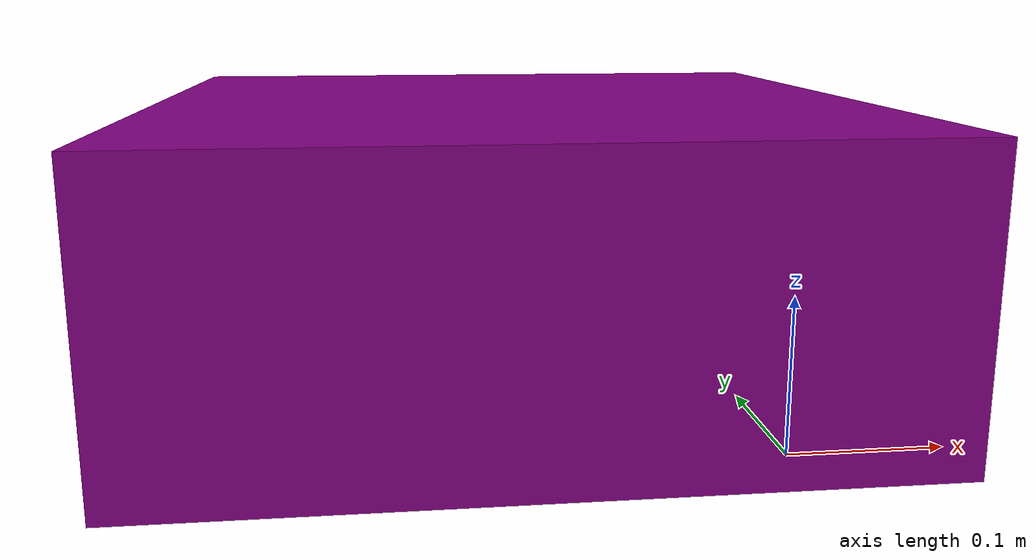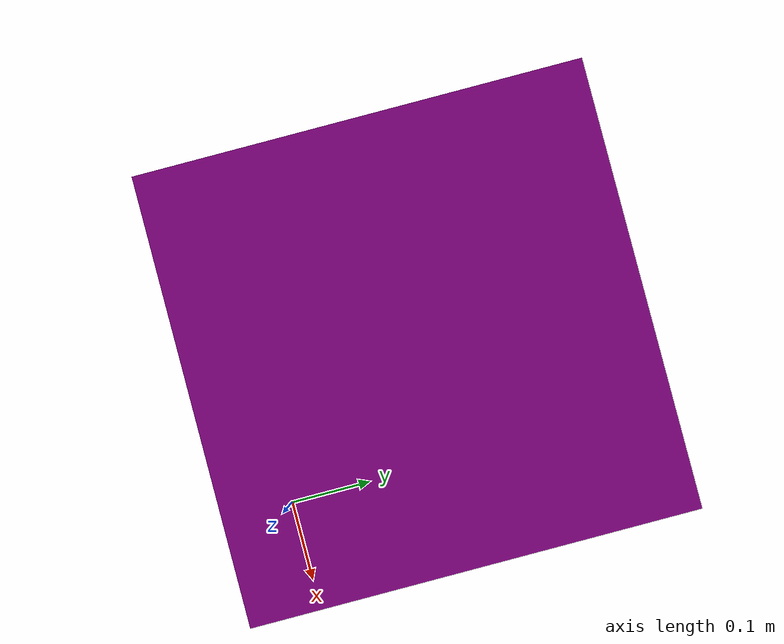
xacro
<?xml version="1.0"?>
<!-- 以slam坐标系为基准的静态tf-->
<robot name="up70" xmlns:xacro="http://tixiaoshan.github.io/">

  <xacro:property name="PI" value="3.1415926535897931" />

  <!-- livox_frame 作为主基座 -->
  <link name="livox_frame" />

  <!-- base_link 现在挂在 livox_frame 上 -->
  <link name="base_link">
    <visual>
      <geometry>
        <box size="0.5 0.5 0.2"/>
      </geometry>
      <origin xyz="0 0 0.1" rpy="0 0 0"/>
      <material name="purple">
        <color rgba="0.5 0 0.5 1"/> <!-- 紫色 -->
      </material>
    </visual>
  </link>

  <joint name="base_joint" type="fixed">
    <parent link="livox_frame"/>
    <child link="base_link"/>
    <origin xyz="-0.15 0.2 0" rpy="0 0 0"/> <!-- 与原始 livox->base_link 的反变换 -->
  </joint>

  <!-- laser_frame 挂在 base_link 上 -->

</robot>
